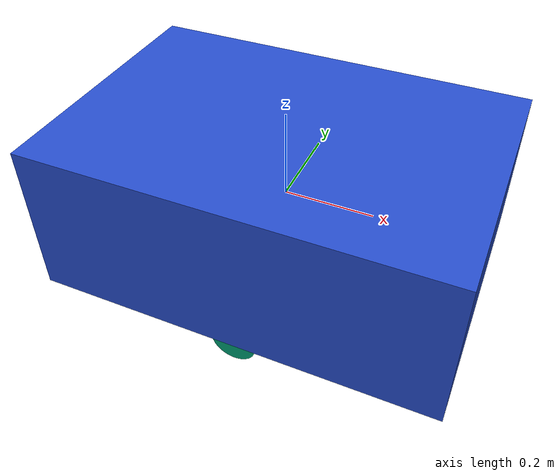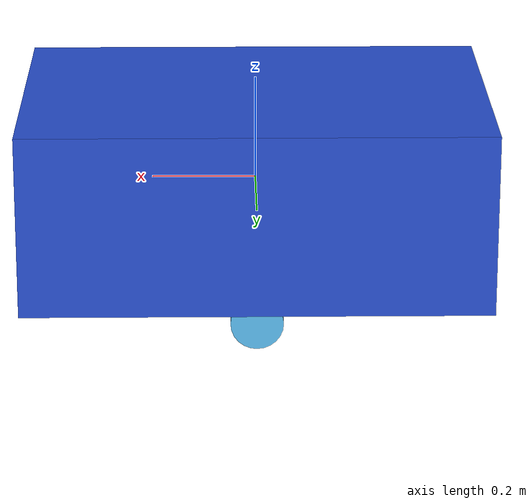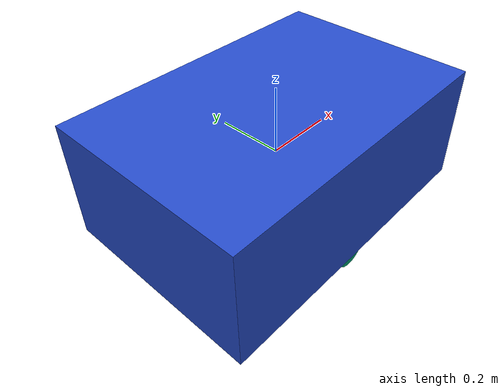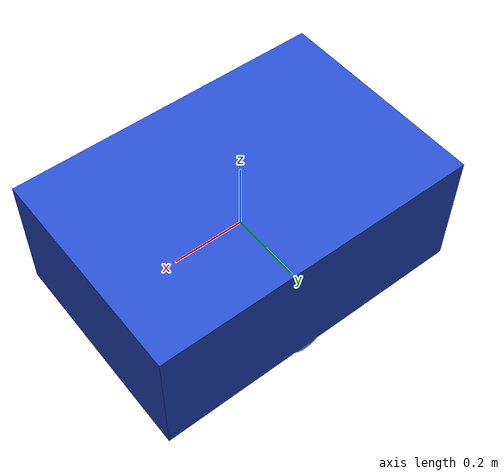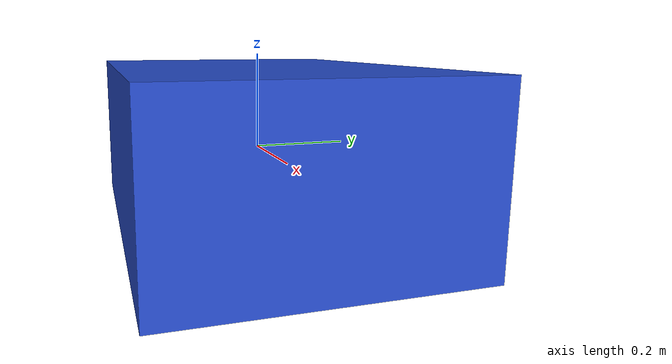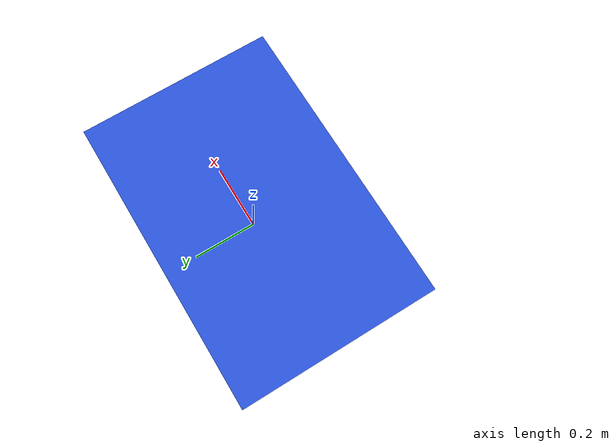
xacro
<?xml version='1.0'?>

<robot name="myrobot" xmlns:xacro="http://www.ros.org/wiki/xacro">

  <xacro:include filename="$(find mybot_description)/urdf/mybot.gazebo" />

  <link name='chassis'>
    <pose>0 0 0.6 0 0 0</pose>

    <inertial>
      <mass value="30.0"/>
      <origin xyz="0 0 0.2" rpy=" 0 0 0"/>
      <inertia
          ixx="1.156916" ixy="0" ixz="0"
          iyy="2.1919" iyz="0"
          izz="2.2259"
      />
    </inertial>

    <collision name='collision'>
      <geometry>
        <box size=".89 .6 .35"/>
      </geometry>
    </collision>

    <visual name='chassis_visual'>
      <origin xyz="0 0 0" rpy=" 0 0 0"/>
      <geometry>
        <box size=".89 .6 .35"/>
      </geometry>
    </visual>
  </link>

  <link name="left_wheel">
    <!--origin xyz="0.1 0.13 0.1" rpy="0 1.5707 1.5707"/-->
    <collision name="collision">
      <origin xyz="0 0 0" rpy="0 1.5707 1.5707"/>
      <geometry>
        <cylinder radius="0.05" length="0.05"/>
      </geometry>
    </collision>
    <visual name="left_wheel_visual">
      <origin xyz="0 0 0" rpy="0 1.5707 1.5707"/>
      <geometry>
        <cylinder radius="0.05" length="0.05"/>
      </geometry>
    </visual>
    <inertial>
      <origin xyz="0 0 0" rpy="0 1.5707 1.5707"/>
      <mass value="8"/>
      <cylinder_inertia m="10" r="0.1" h="0.05"/>
      <inertia
        ixx="1.0" ixy="0.0" ixz="0.0"
        iyy="1.0" iyz="0.0"
        izz="1.0"/>
    </inertial>
  </link>

  <link name="right_wheel">
    <!--origin xyz="0.1 -0.13 0.1" rpy="0 1.5707 1.5707"/-->
    <collision name="collision">
      <origin xyz="0 0 0" rpy="0 1.5707 1.5707"/>
      <geometry>
        <cylinder radius="0.05" length="0.05"/>
      </geometry>
    </collision>
    <visual name="right_wheel_visual">
      <origin xyz="0 0 0" rpy="0 1.5707 1.5707"/>
      <geometry>
        <cylinder radius="0.05" length="0.05"/>
      </geometry>
    </visual>
    <inertial>
      <origin xyz="0 0 0" rpy="0 1.5707 1.5707"/>
      <mass value="8"/>
      <cylinder_inertia m="10" r="0.1" h="0.05"/>
      <inertia
        ixx="1.0" ixy="0.0" ixz="0.0"
        iyy="1.0" iyz="0.0"
        izz="1.0"/>
    </inertial>
  </link>

  <joint type="continuous" name="left_wheel_hinge">
    <origin xyz="0 0.25 -0.2" rpy="0 0 0"/>
    <child link="left_wheel"/>
    <parent link="chassis"/>
    <axis xyz="0 1 0" rpy="0 0 0"/>
    <limit effort="100" velocity="100"/>
    <joint_properties damping="0.0" friction="0.0"/>
  </joint>

  <joint type="continuous" name="right_wheel_hinge">
    <origin xyz="0 -0.25 -0.2" rpy="0 0 0"/>
    <child link="right_wheel"/>
    <parent link="chassis"/>
    <axis xyz="0 1 0" rpy="0 0 0"/>
    <limit effort="100" velocity="100"/>
    <joint_properties damping="0.0" friction="0.0"/>
  </joint>

</robot>
